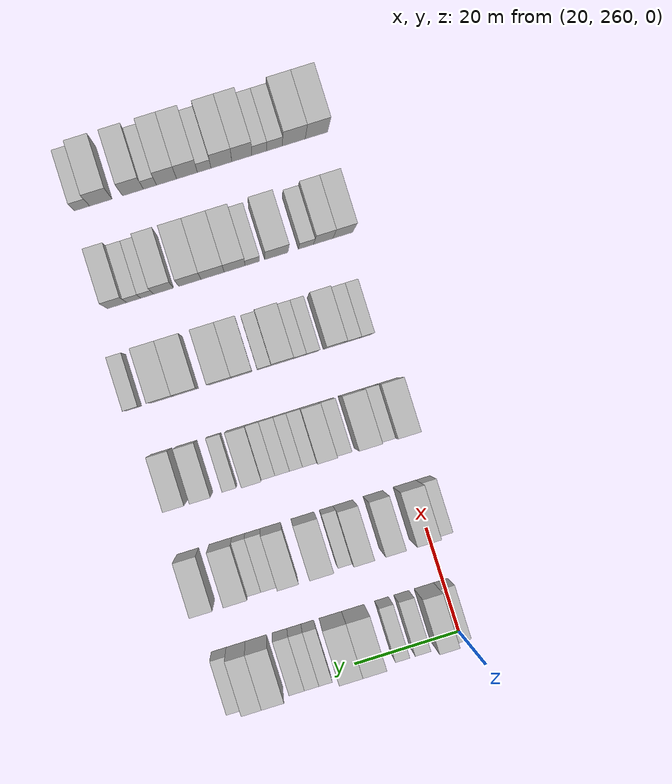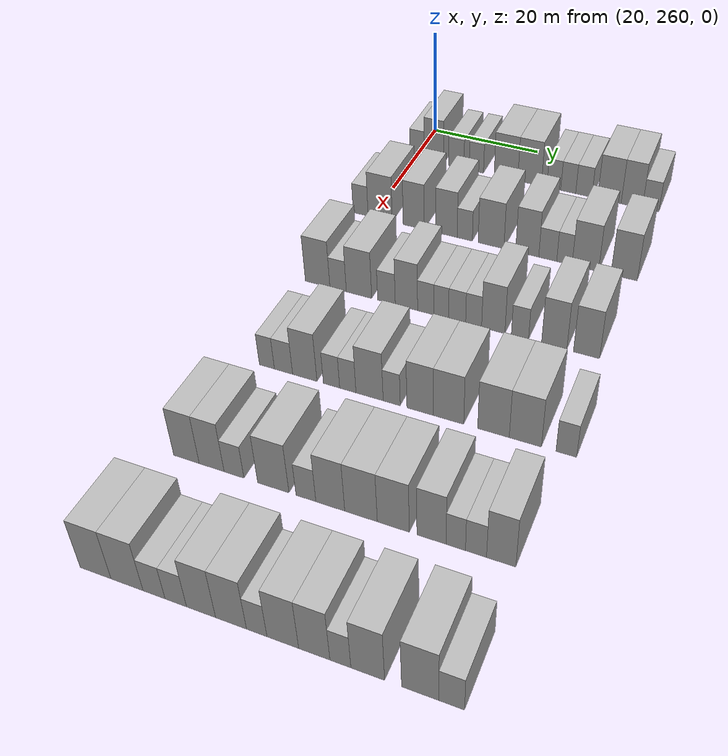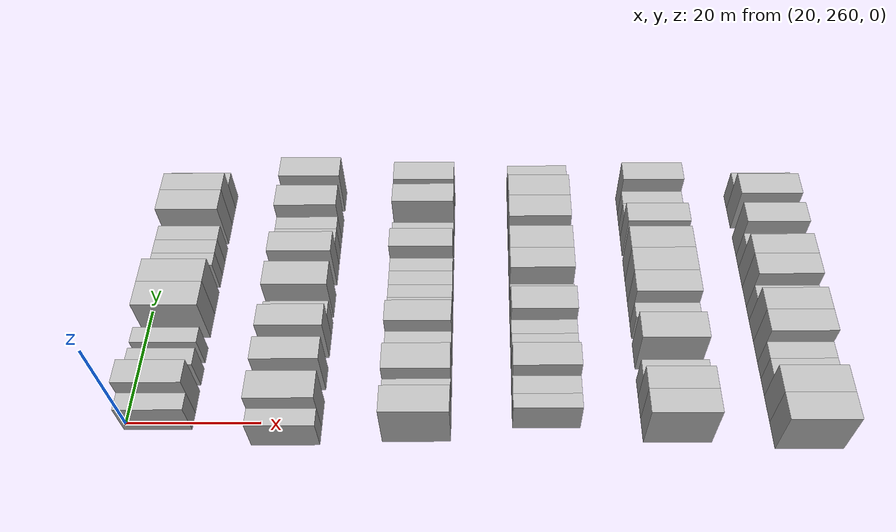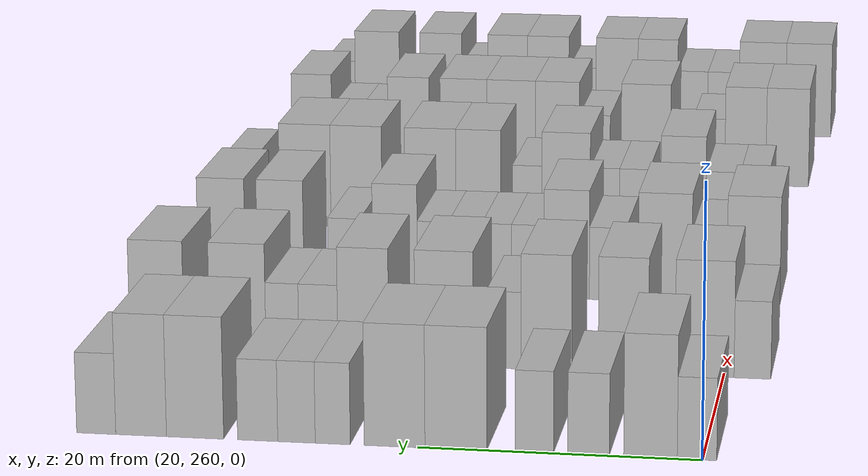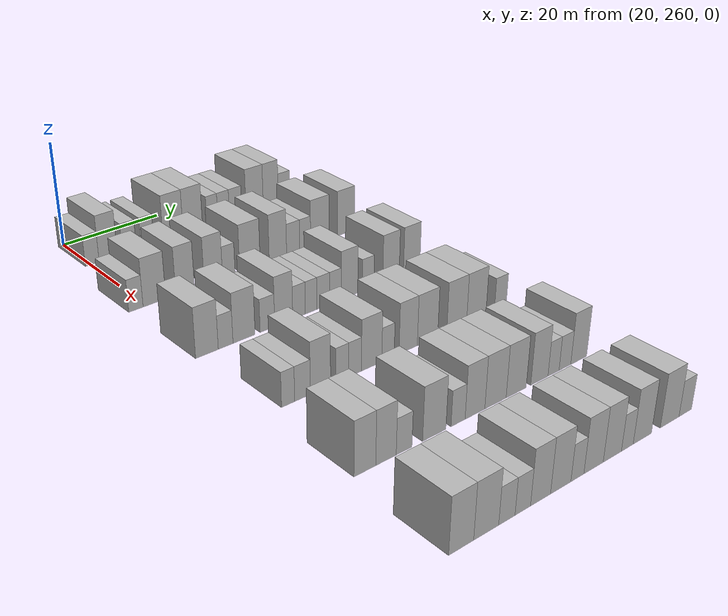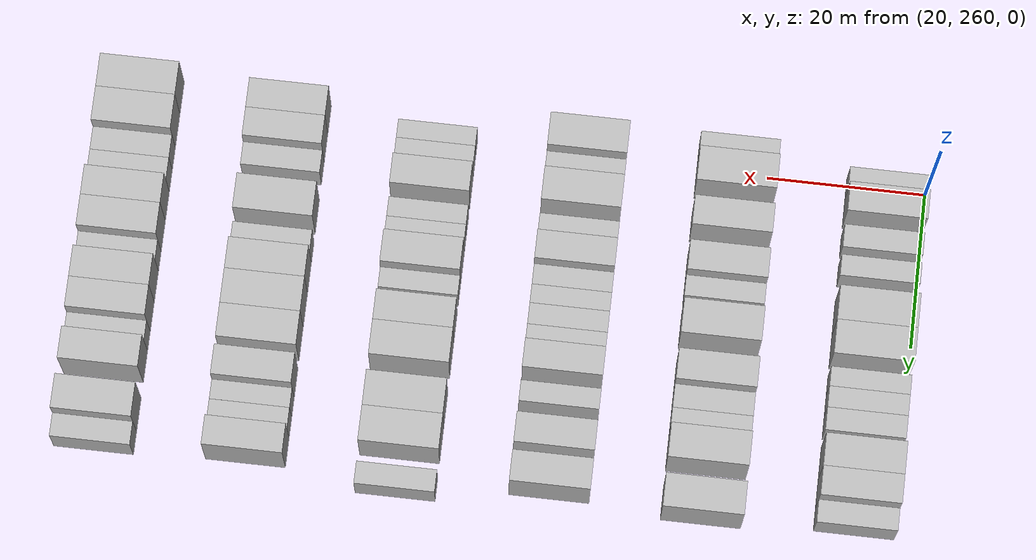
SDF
<sdf version="1.6">
 <world name="default">
  <model name="building_146">
   <static>1</static>
   <pose>25.0000 260.3720 0 0.000000 0.000000 0.000000</pose>
   <link name="link">
    <pose>0 0 3.00 0 0 0</pose>
    <collision name="collision"><geometry><box><size>10.0000 2.7500 6.0000</size></box></geometry></collision>
    <visual name="visual">
     <cast_shadows>0</cast_shadows>
     <geometry><box><size>10.0000 2.7500 6.0000</size></box></geometry>
     <material>
      <script>
       <uri>model://HANNAS_wall/materials/scripts</uri>
       <uri>model://HANNAS_wall/materials/textures</uri>
       <name>vrc/HANNAS_wall</name>
      </script>
     </material>
    </visual>
   </link>
  </model>
  <model name="building_147">
   <static>1</static>
   <pose>25.0000 263.6172 0 0.000000 0.000000 0.000000</pose>
   <link name="link">
    <pose>0 0 4.50 0 0 0</pose>
    <collision name="collision"><geometry><box><size>10.0000 3.7403 9.0000</size></box></geometry></collision>
    <visual name="visual">
     <cast_shadows>0</cast_shadows>
     <geometry><box><size>10.0000 3.7403 9.0000</size></box></geometry>
     <material>
      <script>
       <uri>model://HANNAS_wall/materials/scripts</uri>
       <uri>model://HANNAS_wall/materials/textures</uri>
       <name>vrc/HANNAS_wall</name>
      </script>
     </material>
    </visual>
   </link>
  </model>
  <model name="building_148">
   <static>1</static>
   <pose>25.0000 267.9489 0 0.000000 0.000000 0.000000</pose>
   <link name="link">
    <pose>0 0 3.00 0 0 0</pose>
    <collision name="collision"><geometry><box><size>10.0000 2.9232 6.0000</size></box></geometry></collision>
    <visual name="visual">
     <cast_shadows>0</cast_shadows>
     <geometry><box><size>10.0000 2.9232 6.0000</size></box></geometry>
     <material>
      <script>
       <uri>model://HANNAS_wall/materials/scripts</uri>
       <uri>model://HANNAS_wall/materials/textures</uri>
       <name>vrc/HANNAS_wall</name>
      </script>
     </material>
    </visual>
   </link>
  </model>
  <model name="building_149">
   <static>1</static>
   <pose>25.0000 271.7581 0 0.000000 0.000000 0.000000</pose>
   <link name="link">
    <pose>0 0 3.00 0 0 0</pose>
    <collision name="collision"><geometry><box><size>10.0000 2.6952 6.0000</size></box></geometry></collision>
    <visual name="visual">
     <cast_shadows>0</cast_shadows>
     <geometry><box><size>10.0000 2.6952 6.0000</size></box></geometry>
     <material>
      <script>
       <uri>model://HANNAS_wall/materials/scripts</uri>
       <uri>model://HANNAS_wall/materials/textures</uri>
       <name>vrc/HANNAS_wall</name>
      </script>
     </material>
    </visual>
   </link>
  </model>
  <model name="building_150">
   <static>1</static>
   <pose>25.0000 277.2980 0 0.000000 0.000000 0.000000</pose>
   <link name="link">
    <pose>0 0 4.50 0 0 0</pose>
    <collision name="collision"><geometry><box><size>10.0000 4.3846 9.0000</size></box></geometry></collision>
    <visual name="visual">
     <cast_shadows>0</cast_shadows>
     <geometry><box><size>10.0000 4.3846 9.0000</size></box></geometry>
     <material>
      <script>
       <uri>model://HANNAS_wall/materials/scripts</uri>
       <uri>model://HANNAS_wall/materials/textures</uri>
       <name>vrc/HANNAS_wall</name>
      </script>
     </material>
    </visual>
   </link>
  </model>
  <model name="building_151">
   <static>1</static>
   <pose>25.0000 281.6500 0 0.000000 0.000000 0.000000</pose>
   <link name="link">
    <pose>0 0 4.50 0 0 0</pose>
    <collision name="collision"><geometry><box><size>10.0000 4.3195 9.0000</size></box></geometry></collision>
    <visual name="visual">
     <cast_shadows>0</cast_shadows>
     <geometry><box><size>10.0000 4.3195 9.0000</size></box></geometry>
     <material>
      <script>
       <uri>model://HANNAS_wall/materials/scripts</uri>
       <uri>model://HANNAS_wall/materials/textures</uri>
       <name>vrc/HANNAS_wall</name>
      </script>
     </material>
    </visual>
   </link>
  </model>
  <model name="building_152">
   <static>1</static>
   <pose>25.0000 286.0616 0 0.000000 0.000000 0.000000</pose>
   <link name="link">
    <pose>0 0 3.00 0 0 0</pose>
    <collision name="collision"><geometry><box><size>10.0000 2.5037 6.0000</size></box></geometry></collision>
    <visual name="visual">
     <cast_shadows>0</cast_shadows>
     <geometry><box><size>10.0000 2.5037 6.0000</size></box></geometry>
     <material>
      <script>
       <uri>model://HANNAS_wall/materials/scripts</uri>
       <uri>model://HANNAS_wall/materials/textures</uri>
       <name>vrc/HANNAS_wall</name>
      </script>
     </material>
    </visual>
   </link>
  </model>
  <model name="building_153">
   <static>1</static>
   <pose>25.0000 288.6567 0 0.000000 0.000000 0.000000</pose>
   <link name="link">
    <pose>0 0 3.00 0 0 0</pose>
    <collision name="collision"><geometry><box><size>10.0000 2.6864 6.0000</size></box></geometry></collision>
    <visual name="visual">
     <cast_shadows>0</cast_shadows>
     <geometry><box><size>10.0000 2.6864 6.0000</size></box></geometry>
     <material>
      <script>
       <uri>model://HANNAS_wall/materials/scripts</uri>
       <uri>model://HANNAS_wall/materials/textures</uri>
       <name>vrc/HANNAS_wall</name>
      </script>
     </material>
    </visual>
   </link>
  </model>
  <model name="building_154">
   <static>1</static>
   <pose>25.0000 291.4431 0 0.000000 0.000000 0.000000</pose>
   <link name="link">
    <pose>0 0 3.00 0 0 0</pose>
    <collision name="collision"><geometry><box><size>10.0000 2.8865 6.0000</size></box></geometry></collision>
    <visual name="visual">
     <cast_shadows>0</cast_shadows>
     <geometry><box><size>10.0000 2.8865 6.0000</size></box></geometry>
     <material>
      <script>
       <uri>model://HANNAS_wall/materials/scripts</uri>
       <uri>model://HANNAS_wall/materials/textures</uri>
       <name>vrc/HANNAS_wall</name>
      </script>
     </material>
    </visual>
   </link>
  </model>
  <model name="building_155">
   <static>1</static>
   <pose>25.0000 295.9518 0 0.000000 0.000000 0.000000</pose>
   <link name="link">
    <pose>0 0 4.50 0 0 0</pose>
    <collision name="collision"><geometry><box><size>10.0000 4.1308 9.0000</size></box></geometry></collision>
    <visual name="visual">
     <cast_shadows>0</cast_shadows>
     <geometry><box><size>10.0000 4.1308 9.0000</size></box></geometry>
     <material>
      <script>
       <uri>model://HANNAS_wall/materials/scripts</uri>
       <uri>model://HANNAS_wall/materials/textures</uri>
       <name>vrc/HANNAS_wall</name>
      </script>
     </material>
    </visual>
   </link>
  </model>
  <model name="building_156">
   <static>1</static>
   <pose>25.0000 299.8559 0 0.000000 0.000000 0.000000</pose>
   <link name="link">
    <pose>0 0 4.50 0 0 0</pose>
    <collision name="collision"><geometry><box><size>10.0000 3.6775 9.0000</size></box></geometry></collision>
    <visual name="visual">
     <cast_shadows>0</cast_shadows>
     <geometry><box><size>10.0000 3.6775 9.0000</size></box></geometry>
     <material>
      <script>
       <uri>model://HANNAS_wall/materials/scripts</uri>
       <uri>model://HANNAS_wall/materials/textures</uri>
       <name>vrc/HANNAS_wall</name>
      </script>
     </material>
    </visual>
   </link>
  </model>
  <model name="building_157">
   <static>1</static>
   <pose>25.0000 303.1156 0 0.000000 0.000000 0.000000</pose>
   <link name="link">
    <pose>0 0 3.00 0 0 0</pose>
    <collision name="collision"><geometry><box><size>10.0000 2.8419 6.0000</size></box></geometry></collision>
    <visual name="visual">
     <cast_shadows>0</cast_shadows>
     <geometry><box><size>10.0000 2.8419 6.0000</size></box></geometry>
     <material>
      <script>
       <uri>model://HANNAS_wall/materials/scripts</uri>
       <uri>model://HANNAS_wall/materials/textures</uri>
       <name>vrc/HANNAS_wall</name>
      </script>
     </material>
    </visual>
   </link>
  </model>
  <model name="building_302">
   <static>1</static>
   <pose>44.0000 257.8319 0 0.000000 0.000000 0.000000</pose>
   <link name="link">
    <pose>0 0 3.00 0 0 0</pose>
    <collision name="collision"><geometry><box><size>10.0000 2.7476 6.0000</size></box></geometry></collision>
    <visual name="visual">
     <cast_shadows>0</cast_shadows>
     <geometry><box><size>10.0000 2.7476 6.0000</size></box></geometry>
     <material>
      <script>
       <uri>model://HANNAS_wall/materials/scripts</uri>
       <uri>model://HANNAS_wall/materials/textures</uri>
       <name>vrc/HANNAS_wall</name>
      </script>
     </material>
    </visual>
   </link>
  </model>
  <model name="building_303">
   <static>1</static>
   <pose>44.0000 261.4121 0 0.000000 0.000000 0.000000</pose>
   <link name="link">
    <pose>0 0 4.50 0 0 0</pose>
    <collision name="collision"><geometry><box><size>10.0000 4.4127 9.0000</size></box></geometry></collision>
    <visual name="visual">
     <cast_shadows>0</cast_shadows>
     <geometry><box><size>10.0000 4.4127 9.0000</size></box></geometry>
     <material>
      <script>
       <uri>model://HANNAS_wall/materials/scripts</uri>
       <uri>model://HANNAS_wall/materials/textures</uri>
       <name>vrc/HANNAS_wall</name>
      </script>
     </material>
    </visual>
   </link>
  </model>
  <model name="building_304">
   <static>1</static>
   <pose>44.0000 267.5027 0 0.000000 0.000000 0.000000</pose>
   <link name="link">
    <pose>0 0 4.50 0 0 0</pose>
    <collision name="collision"><geometry><box><size>10.0000 3.7686 9.0000</size></box></geometry></collision>
    <visual name="visual">
     <cast_shadows>0</cast_shadows>
     <geometry><box><size>10.0000 3.7686 9.0000</size></box></geometry>
     <material>
      <script>
       <uri>model://HANNAS_wall/materials/scripts</uri>
       <uri>model://HANNAS_wall/materials/textures</uri>
       <name>vrc/HANNAS_wall</name>
      </script>
     </material>
    </visual>
   </link>
  </model>
  <model name="building_305">
   <static>1</static>
   <pose>44.0000 273.2945 0 0.000000 0.000000 0.000000</pose>
   <link name="link">
    <pose>0 0 4.50 0 0 0</pose>
    <collision name="collision"><geometry><box><size>10.0000 3.8151 9.0000</size></box></geometry></collision>
    <visual name="visual">
     <cast_shadows>0</cast_shadows>
     <geometry><box><size>10.0000 3.8151 9.0000</size></box></geometry>
     <material>
      <script>
       <uri>model://HANNAS_wall/materials/scripts</uri>
       <uri>model://HANNAS_wall/materials/textures</uri>
       <name>vrc/HANNAS_wall</name>
      </script>
     </material>
    </visual>
   </link>
  </model>
  <model name="building_306">
   <static>1</static>
   <pose>44.0000 276.5291 0 0.000000 0.000000 0.000000</pose>
   <link name="link">
    <pose>0 0 3.00 0 0 0</pose>
    <collision name="collision"><geometry><box><size>10.0000 2.6540 6.0000</size></box></geometry></collision>
    <visual name="visual">
     <cast_shadows>0</cast_shadows>
     <geometry><box><size>10.0000 2.6540 6.0000</size></box></geometry>
     <material>
      <script>
       <uri>model://HANNAS_wall/materials/scripts</uri>
       <uri>model://HANNAS_wall/materials/textures</uri>
       <name>vrc/HANNAS_wall</name>
      </script>
     </material>
    </visual>
   </link>
  </model>
  <model name="building_307">
   <static>1</static>
   <pose>44.0000 281.0723 0 0.000000 0.000000 0.000000</pose>
   <link name="link">
    <pose>0 0 4.50 0 0 0</pose>
    <collision name="collision"><geometry><box><size>10.0000 4.4323 9.0000</size></box></geometry></collision>
    <visual name="visual">
     <cast_shadows>0</cast_shadows>
     <geometry><box><size>10.0000 4.4323 9.0000</size></box></geometry>
     <material>
      <script>
       <uri>model://HANNAS_wall/materials/scripts</uri>
       <uri>model://HANNAS_wall/materials/textures</uri>
       <name>vrc/HANNAS_wall</name>
      </script>
     </material>
    </visual>
   </link>
  </model>
  <model name="building_308">
   <static>1</static>
   <pose>44.0000 287.2372 0 0.000000 0.000000 0.000000</pose>
   <link name="link">
    <pose>0 0 4.50 0 0 0</pose>
    <collision name="collision"><geometry><box><size>10.0000 3.8975 9.0000</size></box></geometry></collision>
    <visual name="visual">
     <cast_shadows>0</cast_shadows>
     <geometry><box><size>10.0000 3.8975 9.0000</size></box></geometry>
     <material>
      <script>
       <uri>model://HANNAS_wall/materials/scripts</uri>
       <uri>model://HANNAS_wall/materials/textures</uri>
       <name>vrc/HANNAS_wall</name>
      </script>
     </material>
    </visual>
   </link>
  </model>
  <model name="building_309">
   <static>1</static>
   <pose>44.0000 290.6835 0 0.000000 0.000000 0.000000</pose>
   <link name="link">
    <pose>0 0 3.00 0 0 0</pose>
    <collision name="collision"><geometry><box><size>10.0000 2.9951 6.0000</size></box></geometry></collision>
    <visual name="visual">
     <cast_shadows>0</cast_shadows>
     <geometry><box><size>10.0000 2.9951 6.0000</size></box></geometry>
     <material>
      <script>
       <uri>model://HANNAS_wall/materials/scripts</uri>
       <uri>model://HANNAS_wall/materials/textures</uri>
       <name>vrc/HANNAS_wall</name>
      </script>
     </material>
    </visual>
   </link>
  </model>
  <model name="building_310">
   <static>1</static>
   <pose>44.0000 293.4499 0 0.000000 0.000000 0.000000</pose>
   <link name="link">
    <pose>0 0 3.00 0 0 0</pose>
    <collision name="collision"><geometry><box><size>10.0000 2.5378 6.0000</size></box></geometry></collision>
    <visual name="visual">
     <cast_shadows>0</cast_shadows>
     <geometry><box><size>10.0000 2.5378 6.0000</size></box></geometry>
     <material>
      <script>
       <uri>model://HANNAS_wall/materials/scripts</uri>
       <uri>model://HANNAS_wall/materials/textures</uri>
       <name>vrc/HANNAS_wall</name>
      </script>
     </material>
    </visual>
   </link>
  </model>
  <model name="building_311">
   <static>1</static>
   <pose>44.0000 296.8834 0 0.000000 0.000000 0.000000</pose>
   <link name="link">
    <pose>0 0 4.50 0 0 0</pose>
    <collision name="collision"><geometry><box><size>10.0000 4.3292 9.0000</size></box></geometry></collision>
    <visual name="visual">
     <cast_shadows>0</cast_shadows>
     <geometry><box><size>10.0000 4.3292 9.0000</size></box></geometry>
     <material>
      <script>
       <uri>model://HANNAS_wall/materials/scripts</uri>
       <uri>model://HANNAS_wall/materials/textures</uri>
       <name>vrc/HANNAS_wall</name>
      </script>
     </material>
    </visual>
   </link>
  </model>
  <model name="building_312">
   <static>1</static>
   <pose>44.0000 303.1518 0 0.000000 0.000000 0.000000</pose>
   <link name="link">
    <pose>0 0 4.50 0 0 0</pose>
    <collision name="collision"><geometry><box><size>10.0000 4.2075 9.0000</size></box></geometry></collision>
    <visual name="visual">
     <cast_shadows>0</cast_shadows>
     <geometry><box><size>10.0000 4.2075 9.0000</size></box></geometry>
     <material>
      <script>
       <uri>model://HANNAS_wall/materials/scripts</uri>
       <uri>model://HANNAS_wall/materials/textures</uri>
       <name>vrc/HANNAS_wall</name>
      </script>
     </material>
    </visual>
   </link>
  </model>
  <model name="building_478">
   <static>1</static>
   <pose>63.0000 259.0884 0 0.000000 0.000000 0.000000</pose>
   <link name="link">
    <pose>0 0 4.50 0 0 0</pose>
    <collision name="collision"><geometry><box><size>10.0000 4.2360 9.0000</size></box></geometry></collision>
    <visual name="visual">
     <cast_shadows>0</cast_shadows>
     <geometry><box><size>10.0000 4.2360 9.0000</size></box></geometry>
     <material>
      <script>
       <uri>model://HANNAS_wall/materials/scripts</uri>
       <uri>model://HANNAS_wall/materials/textures</uri>
       <name>vrc/HANNAS_wall</name>
      </script>
     </material>
    </visual>
   </link>
  </model>
  <model name="building_479">
   <static>1</static>
   <pose>63.0000 262.6078 0 0.000000 0.000000 0.000000</pose>
   <link name="link">
    <pose>0 0 3.00 0 0 0</pose>
    <collision name="collision"><geometry><box><size>10.0000 2.8029 6.0000</size></box></geometry></collision>
    <visual name="visual">
     <cast_shadows>0</cast_shadows>
     <geometry><box><size>10.0000 2.8029 6.0000</size></box></geometry>
     <material>
      <script>
       <uri>model://HANNAS_wall/materials/scripts</uri>
       <uri>model://HANNAS_wall/materials/textures</uri>
       <name>vrc/HANNAS_wall</name>
      </script>
     </material>
    </visual>
   </link>
  </model>
  <model name="building_480">
   <static>1</static>
   <pose>63.0000 266.1550 0 0.000000 0.000000 0.000000</pose>
   <link name="link">
    <pose>0 0 4.50 0 0 0</pose>
    <collision name="collision"><geometry><box><size>10.0000 4.2916 9.0000</size></box></geometry></collision>
    <visual name="visual">
     <cast_shadows>0</cast_shadows>
     <geometry><box><size>10.0000 4.2916 9.0000</size></box></geometry>
     <material>
      <script>
       <uri>model://HANNAS_wall/materials/scripts</uri>
       <uri>model://HANNAS_wall/materials/textures</uri>
       <name>vrc/HANNAS_wall</name>
      </script>
     </material>
    </visual>
   </link>
  </model>
  <model name="building_481">
   <static>1</static>
   <pose>63.0000 270.7632 0 0.000000 0.000000 0.000000</pose>
   <link name="link">
    <pose>0 0 3.00 0 0 0</pose>
    <collision name="collision"><geometry><box><size>10.0000 2.9246 6.0000</size></box></geometry></collision>
    <visual name="visual">
     <cast_shadows>0</cast_shadows>
     <geometry><box><size>10.0000 2.9246 6.0000</size></box></geometry>
     <material>
      <script>
       <uri>model://HANNAS_wall/materials/scripts</uri>
       <uri>model://HANNAS_wall/materials/textures</uri>
       <name>vrc/HANNAS_wall</name>
      </script>
     </material>
    </visual>
   </link>
  </model>
  <model name="building_482">
   <static>1</static>
   <pose>63.0000 274.0598 0 0.000000 0.000000 0.000000</pose>
   <link name="link">
    <pose>0 0 4.50 0 0 0</pose>
    <collision name="collision"><geometry><box><size>10.0000 3.6686 9.0000</size></box></geometry></collision>
    <visual name="visual">
     <cast_shadows>0</cast_shadows>
     <geometry><box><size>10.0000 3.6686 9.0000</size></box></geometry>
     <material>
      <script>
       <uri>model://HANNAS_wall/materials/scripts</uri>
       <uri>model://HANNAS_wall/materials/textures</uri>
       <name>vrc/HANNAS_wall</name>
      </script>
     </material>
    </visual>
   </link>
  </model>
  <model name="building_483">
   <static>1</static>
   <pose>63.0000 277.1998 0 0.000000 0.000000 0.000000</pose>
   <link name="link">
    <pose>0 0 3.00 0 0 0</pose>
    <collision name="collision"><geometry><box><size>10.0000 2.6113 6.0000</size></box></geometry></collision>
    <visual name="visual">
     <cast_shadows>0</cast_shadows>
     <geometry><box><size>10.0000 2.6113 6.0000</size></box></geometry>
     <material>
      <script>
       <uri>model://HANNAS_wall/materials/scripts</uri>
       <uri>model://HANNAS_wall/materials/textures</uri>
       <name>vrc/HANNAS_wall</name>
      </script>
     </material>
    </visual>
   </link>
  </model>
  <model name="building_484">
   <static>1</static>
   <pose>63.0000 279.7142 0 0.000000 0.000000 0.000000</pose>
   <link name="link">
    <pose>0 0 3.00 0 0 0</pose>
    <collision name="collision"><geometry><box><size>10.0000 2.4177 6.0000</size></box></geometry></collision>
    <visual name="visual">
     <cast_shadows>0</cast_shadows>
     <geometry><box><size>10.0000 2.4177 6.0000</size></box></geometry>
     <material>
      <script>
       <uri>model://HANNAS_wall/materials/scripts</uri>
       <uri>model://HANNAS_wall/materials/textures</uri>
       <name>vrc/HANNAS_wall</name>
      </script>
     </material>
    </visual>
   </link>
  </model>
  <model name="building_485">
   <static>1</static>
   <pose>63.0000 282.2805 0 0.000000 0.000000 0.000000</pose>
   <link name="link">
    <pose>0 0 3.00 0 0 0</pose>
    <collision name="collision"><geometry><box><size>10.0000 2.7148 6.0000</size></box></geometry></collision>
    <visual name="visual">
     <cast_shadows>0</cast_shadows>
     <geometry><box><size>10.0000 2.7148 6.0000</size></box></geometry>
     <material>
      <script>
       <uri>model://HANNAS_wall/materials/scripts</uri>
       <uri>model://HANNAS_wall/materials/textures</uri>
       <name>vrc/HANNAS_wall</name>
      </script>
     </material>
    </visual>
   </link>
  </model>
  <model name="building_486">
   <static>1</static>
   <pose>63.0000 284.9023 0 0.000000 0.000000 0.000000</pose>
   <link name="link">
    <pose>0 0 3.00 0 0 0</pose>
    <collision name="collision"><geometry><box><size>10.0000 2.5289 6.0000</size></box></geometry></collision>
    <visual name="visual">
     <cast_shadows>0</cast_shadows>
     <geometry><box><size>10.0000 2.5289 6.0000</size></box></geometry>
     <material>
      <script>
       <uri>model://HANNAS_wall/materials/scripts</uri>
       <uri>model://HANNAS_wall/materials/textures</uri>
       <name>vrc/HANNAS_wall</name>
      </script>
     </material>
    </visual>
   </link>
  </model>
  <model name="building_487">
   <static>1</static>
   <pose>63.0000 287.9928 0 0.000000 0.000000 0.000000</pose>
   <link name="link">
    <pose>0 0 4.50 0 0 0</pose>
    <collision name="collision"><geometry><box><size>10.0000 3.6520 9.0000</size></box></geometry></collision>
    <visual name="visual">
     <cast_shadows>0</cast_shadows>
     <geometry><box><size>10.0000 3.6520 9.0000</size></box></geometry>
     <material>
      <script>
       <uri>model://HANNAS_wall/materials/scripts</uri>
       <uri>model://HANNAS_wall/materials/textures</uri>
       <name>vrc/HANNAS_wall</name>
      </script>
     </material>
    </visual>
   </link>
  </model>
  <model name="building_488">
   <static>1</static>
   <pose>63.0000 292.1440 0 0.000000 0.000000 0.000000</pose>
   <link name="link">
    <pose>0 0 3.00 0 0 0</pose>
    <collision name="collision"><geometry><box><size>10.0000 2.6503 6.0000</size></box></geometry></collision>
    <visual name="visual">
     <cast_shadows>0</cast_shadows>
     <geometry><box><size>10.0000 2.6503 6.0000</size></box></geometry>
     <material>
      <script>
       <uri>model://HANNAS_wall/materials/scripts</uri>
       <uri>model://HANNAS_wall/materials/textures</uri>
       <name>vrc/HANNAS_wall</name>
      </script>
     </material>
    </visual>
   </link>
  </model>
  <model name="building_489">
   <static>1</static>
   <pose>63.0000 297.3786 0 0.000000 0.000000 0.000000</pose>
   <link name="link">
    <pose>0 0 4.50 0 0 0</pose>
    <collision name="collision"><geometry><box><size>10.0000 3.8190 9.0000</size></box></geometry></collision>
    <visual name="visual">
     <cast_shadows>0</cast_shadows>
     <geometry><box><size>10.0000 3.8190 9.0000</size></box></geometry>
     <material>
      <script>
       <uri>model://HANNAS_wall/materials/scripts</uri>
       <uri>model://HANNAS_wall/materials/textures</uri>
       <name>vrc/HANNAS_wall</name>
      </script>
     </material>
    </visual>
   </link>
  </model>
  <model name="building_490">
   <static>1</static>
   <pose>63.0000 302.2410 0 0.000000 0.000000 0.000000</pose>
   <link name="link">
    <pose>0 0 4.50 0 0 0</pose>
    <collision name="collision"><geometry><box><size>10.0000 3.9057 9.0000</size></box></geometry></collision>
    <visual name="visual">
     <cast_shadows>0</cast_shadows>
     <geometry><box><size>10.0000 3.9057 9.0000</size></box></geometry>
     <material>
      <script>
       <uri>model://HANNAS_wall/materials/scripts</uri>
       <uri>model://HANNAS_wall/materials/textures</uri>
       <name>vrc/HANNAS_wall</name>
      </script>
     </material>
    </visual>
   </link>
  </model>
  <model name="building_641">
   <static>1</static>
   <pose>82.0000 260.3538 0 0.000000 0.000000 0.000000</pose>
   <link name="link">
    <pose>0 0 3.00 0 0 0</pose>
    <collision name="collision"><geometry><box><size>10.0000 2.4054 6.0000</size></box></geometry></collision>
    <visual name="visual">
     <cast_shadows>0</cast_shadows>
     <geometry><box><size>10.0000 2.4054 6.0000</size></box></geometry>
     <material>
      <script>
       <uri>model://HANNAS_wall/materials/scripts</uri>
       <uri>model://HANNAS_wall/materials/textures</uri>
       <name>vrc/HANNAS_wall</name>
      </script>
     </material>
    </visual>
   </link>
  </model>
  <model name="building_642">
   <static>1</static>
   <pose>82.0000 263.0087 0 0.000000 0.000000 0.000000</pose>
   <link name="link">
    <pose>0 0 3.00 0 0 0</pose>
    <collision name="collision"><geometry><box><size>10.0000 2.9045 6.0000</size></box></geometry></collision>
    <visual name="visual">
     <cast_shadows>0</cast_shadows>
     <geometry><box><size>10.0000 2.9045 6.0000</size></box></geometry>
     <material>
      <script>
       <uri>model://HANNAS_wall/materials/scripts</uri>
       <uri>model://HANNAS_wall/materials/textures</uri>
       <name>vrc/HANNAS_wall</name>
      </script>
     </material>
    </visual>
   </link>
  </model>
  <model name="building_643">
   <static>1</static>
   <pose>82.0000 266.3806 0 0.000000 0.000000 0.000000</pose>
   <link name="link">
    <pose>0 0 4.50 0 0 0</pose>
    <collision name="collision"><geometry><box><size>10.0000 3.8392 9.0000</size></box></geometry></collision>
    <visual name="visual">
     <cast_shadows>0</cast_shadows>
     <geometry><box><size>10.0000 3.8392 9.0000</size></box></geometry>
     <material>
      <script>
       <uri>model://HANNAS_wall/materials/scripts</uri>
       <uri>model://HANNAS_wall/materials/textures</uri>
       <name>vrc/HANNAS_wall</name>
      </script>
     </material>
    </visual>
   </link>
  </model>
  <model name="building_644">
   <static>1</static>
   <pose>82.0000 270.5639 0 0.000000 0.000000 0.000000</pose>
   <link name="link">
    <pose>0 0 3.00 0 0 0</pose>
    <collision name="collision"><geometry><box><size>10.0000 2.5275 6.0000</size></box></geometry></collision>
    <visual name="visual">
     <cast_shadows>0</cast_shadows>
     <geometry><box><size>10.0000 2.5275 6.0000</size></box></geometry>
     <material>
      <script>
       <uri>model://HANNAS_wall/materials/scripts</uri>
       <uri>model://HANNAS_wall/materials/textures</uri>
       <name>vrc/HANNAS_wall</name>
      </script>
     </material>
    </visual>
   </link>
  </model>
  <model name="building_645">
   <static>1</static>
   <pose>82.0000 273.0786 0 0.000000 0.000000 0.000000</pose>
   <link name="link">
    <pose>0 0 3.00 0 0 0</pose>
    <collision name="collision"><geometry><box><size>10.0000 2.5019 6.0000</size></box></geometry></collision>
    <visual name="visual">
     <cast_shadows>0</cast_shadows>
     <geometry><box><size>10.0000 2.5019 6.0000</size></box></geometry>
     <material>
      <script>
       <uri>model://HANNAS_wall/materials/scripts</uri>
       <uri>model://HANNAS_wall/materials/textures</uri>
       <name>vrc/HANNAS_wall</name>
      </script>
     </material>
    </visual>
   </link>
  </model>
  <model name="building_646">
   <static>1</static>
   <pose>82.0000 276.3926 0 0.000000 0.000000 0.000000</pose>
   <link name="link">
    <pose>0 0 4.50 0 0 0</pose>
    <collision name="collision"><geometry><box><size>10.0000 4.1261 9.0000</size></box></geometry></collision>
    <visual name="visual">
     <cast_shadows>0</cast_shadows>
     <geometry><box><size>10.0000 4.1261 9.0000</size></box></geometry>
     <material>
      <script>
       <uri>model://HANNAS_wall/materials/scripts</uri>
       <uri>model://HANNAS_wall/materials/textures</uri>
       <name>vrc/HANNAS_wall</name>
      </script>
     </material>
    </visual>
   </link>
  </model>
  <model name="building_647">
   <static>1</static>
   <pose>82.0000 279.7356 0 0.000000 0.000000 0.000000</pose>
   <link name="link">
    <pose>0 0 3.00 0 0 0</pose>
    <collision name="collision"><geometry><box><size>10.0000 2.5601 6.0000</size></box></geometry></collision>
    <visual name="visual">
     <cast_shadows>0</cast_shadows>
     <geometry><box><size>10.0000 2.5601 6.0000</size></box></geometry>
     <material>
      <script>
       <uri>model://HANNAS_wall/materials/scripts</uri>
       <uri>model://HANNAS_wall/materials/textures</uri>
       <name>vrc/HANNAS_wall</name>
      </script>
     </material>
    </visual>
   </link>
  </model>
  <model name="building_648">
   <static>1</static>
   <pose>82.0000 283.9540 0 0.000000 0.000000 0.000000</pose>
   <link name="link">
    <pose>0 0 4.50 0 0 0</pose>
    <collision name="collision"><geometry><box><size>10.0000 3.8766 9.0000</size></box></geometry></collision>
    <visual name="visual">
     <cast_shadows>0</cast_shadows>
     <geometry><box><size>10.0000 3.8766 9.0000</size></box></geometry>
     <material>
      <script>
       <uri>model://HANNAS_wall/materials/scripts</uri>
       <uri>model://HANNAS_wall/materials/textures</uri>
       <name>vrc/HANNAS_wall</name>
      </script>
     </material>
    </visual>
   </link>
  </model>
  <model name="building_649">
   <static>1</static>
   <pose>82.0000 288.1056 0 0.000000 0.000000 0.000000</pose>
   <link name="link">
    <pose>0 0 4.50 0 0 0</pose>
    <collision name="collision"><geometry><box><size>10.0000 4.4266 9.0000</size></box></geometry></collision>
    <visual name="visual">
     <cast_shadows>0</cast_shadows>
     <geometry><box><size>10.0000 4.4266 9.0000</size></box></geometry>
     <material>
      <script>
       <uri>model://HANNAS_wall/materials/scripts</uri>
       <uri>model://HANNAS_wall/materials/textures</uri>
       <name>vrc/HANNAS_wall</name>
      </script>
     </material>
    </visual>
   </link>
  </model>
  <model name="building_650">
   <static>1</static>
   <pose>82.0000 294.5526 0 0.000000 0.000000 0.000000</pose>
   <link name="link">
    <pose>0 0 4.50 0 0 0</pose>
    <collision name="collision"><geometry><box><size>10.0000 4.4674 9.0000</size></box></geometry></collision>
    <visual name="visual">
     <cast_shadows>0</cast_shadows>
     <geometry><box><size>10.0000 4.4674 9.0000</size></box></geometry>
     <material>
      <script>
       <uri>model://HANNAS_wall/materials/scripts</uri>
       <uri>model://HANNAS_wall/materials/textures</uri>
       <name>vrc/HANNAS_wall</name>
      </script>
     </material>
    </visual>
   </link>
  </model>
  <model name="building_651">
   <static>1</static>
   <pose>82.0000 299.0259 0 0.000000 0.000000 0.000000</pose>
   <link name="link">
    <pose>0 0 4.50 0 0 0</pose>
    <collision name="collision"><geometry><box><size>10.0000 4.4792 9.0000</size></box></geometry></collision>
    <visual name="visual">
     <cast_shadows>0</cast_shadows>
     <geometry><box><size>10.0000 4.4792 9.0000</size></box></geometry>
     <material>
      <script>
       <uri>model://HANNAS_wall/materials/scripts</uri>
       <uri>model://HANNAS_wall/materials/textures</uri>
       <name>vrc/HANNAS_wall</name>
      </script>
     </material>
    </visual>
   </link>
  </model>
  <model name="building_652">
   <static>1</static>
   <pose>82.0000 304.6731 0 0.000000 0.000000 0.000000</pose>
   <link name="link">
    <pose>0 0 3.00 0 0 0</pose>
    <collision name="collision"><geometry><box><size>10.0000 2.8151 6.0000</size></box></geometry></collision>
    <visual name="visual">
     <cast_shadows>0</cast_shadows>
     <geometry><box><size>10.0000 2.8151 6.0000</size></box></geometry>
     <material>
      <script>
       <uri>model://HANNAS_wall/materials/scripts</uri>
       <uri>model://HANNAS_wall/materials/textures</uri>
       <name>vrc/HANNAS_wall</name>
      </script>
     </material>
    </visual>
   </link>
  </model>
  <model name="building_820">
   <static>1</static>
   <pose>101.0000 258.6617 0 0.000000 0.000000 0.000000</pose>
   <link name="link">
    <pose>0 0 4.50 0 0 0</pose>
    <collision name="collision"><geometry><box><size>10.0000 3.8390 9.0000</size></box></geometry></collision>
    <visual name="visual">
     <cast_shadows>0</cast_shadows>
     <geometry><box><size>10.0000 3.8390 9.0000</size></box></geometry>
     <material>
      <script>
       <uri>model://HANNAS_wall/materials/scripts</uri>
       <uri>model://HANNAS_wall/materials/textures</uri>
       <name>vrc/HANNAS_wall</name>
      </script>
     </material>
    </visual>
   </link>
  </model>
  <model name="building_821">
   <static>1</static>
   <pose>101.0000 262.4317 0 0.000000 0.000000 0.000000</pose>
   <link name="link">
    <pose>0 0 4.50 0 0 0</pose>
    <collision name="collision"><geometry><box><size>10.0000 3.7012 9.0000</size></box></geometry></collision>
    <visual name="visual">
     <cast_shadows>0</cast_shadows>
     <geometry><box><size>10.0000 3.7012 9.0000</size></box></geometry>
     <material>
      <script>
       <uri>model://HANNAS_wall/materials/scripts</uri>
       <uri>model://HANNAS_wall/materials/textures</uri>
       <name>vrc/HANNAS_wall</name>
      </script>
     </material>
    </visual>
   </link>
  </model>
  <model name="building_822">
   <static>1</static>
   <pose>101.0000 265.7371 0 0.000000 0.000000 0.000000</pose>
   <link name="link">
    <pose>0 0 3.00 0 0 0</pose>
    <collision name="collision"><geometry><box><size>10.0000 2.9096 6.0000</size></box></geometry></collision>
    <visual name="visual">
     <cast_shadows>0</cast_shadows>
     <geometry><box><size>10.0000 2.9096 6.0000</size></box></geometry>
     <material>
      <script>
       <uri>model://HANNAS_wall/materials/scripts</uri>
       <uri>model://HANNAS_wall/materials/textures</uri>
       <name>vrc/HANNAS_wall</name>
      </script>
     </material>
    </visual>
   </link>
  </model>
  <model name="building_823">
   <static>1</static>
   <pose>101.0000 271.4336 0 0.000000 0.000000 0.000000</pose>
   <link name="link">
    <pose>0 0 4.50 0 0 0</pose>
    <collision name="collision"><geometry><box><size>10.0000 4.4834 9.0000</size></box></geometry></collision>
    <visual name="visual">
     <cast_shadows>0</cast_shadows>
     <geometry><box><size>10.0000 4.4834 9.0000</size></box></geometry>
     <material>
      <script>
       <uri>model://HANNAS_wall/materials/scripts</uri>
       <uri>model://HANNAS_wall/materials/textures</uri>
       <name>vrc/HANNAS_wall</name>
      </script>
     </material>
    </visual>
   </link>
  </model>
  <model name="building_824">
   <static>1</static>
   <pose>101.0000 276.0699 0 0.000000 0.000000 0.000000</pose>
   <link name="link">
    <pose>0 0 3.00 0 0 0</pose>
    <collision name="collision"><geometry><box><size>10.0000 2.7891 6.0000</size></box></geometry></collision>
    <visual name="visual">
     <cast_shadows>0</cast_shadows>
     <geometry><box><size>10.0000 2.7891 6.0000</size></box></geometry>
     <material>
      <script>
       <uri>model://HANNAS_wall/materials/scripts</uri>
       <uri>model://HANNAS_wall/materials/textures</uri>
       <name>vrc/HANNAS_wall</name>
      </script>
     </material>
    </visual>
   </link>
  </model>
  <model name="building_825">
   <static>1</static>
   <pose>101.0000 279.4677 0 0.000000 0.000000 0.000000</pose>
   <link name="link">
    <pose>0 0 4.50 0 0 0</pose>
    <collision name="collision"><geometry><box><size>10.0000 4.0065 9.0000</size></box></geometry></collision>
    <visual name="visual">
     <cast_shadows>0</cast_shadows>
     <geometry><box><size>10.0000 4.0065 9.0000</size></box></geometry>
     <material>
      <script>
       <uri>model://HANNAS_wall/materials/scripts</uri>
       <uri>model://HANNAS_wall/materials/textures</uri>
       <name>vrc/HANNAS_wall</name>
      </script>
     </material>
    </visual>
   </link>
  </model>
  <model name="building_826">
   <static>1</static>
   <pose>101.0000 283.6912 0 0.000000 0.000000 0.000000</pose>
   <link name="link">
    <pose>0 0 4.50 0 0 0</pose>
    <collision name="collision"><geometry><box><size>10.0000 4.4405 9.0000</size></box></geometry></collision>
    <visual name="visual">
     <cast_shadows>0</cast_shadows>
     <geometry><box><size>10.0000 4.4405 9.0000</size></box></geometry>
     <material>
      <script>
       <uri>model://HANNAS_wall/materials/scripts</uri>
       <uri>model://HANNAS_wall/materials/textures</uri>
       <name>vrc/HANNAS_wall</name>
      </script>
     </material>
    </visual>
   </link>
  </model>
  <model name="building_827">
   <static>1</static>
   <pose>101.0000 288.0558 0 0.000000 0.000000 0.000000</pose>
   <link name="link">
    <pose>0 0 4.50 0 0 0</pose>
    <collision name="collision"><geometry><box><size>10.0000 4.2888 9.0000</size></box></geometry></collision>
    <visual name="visual">
     <cast_shadows>0</cast_shadows>
     <geometry><box><size>10.0000 4.2888 9.0000</size></box></geometry>
     <material>
      <script>
       <uri>model://HANNAS_wall/materials/scripts</uri>
       <uri>model://HANNAS_wall/materials/textures</uri>
       <name>vrc/HANNAS_wall</name>
      </script>
     </material>
    </visual>
   </link>
  </model>
  <model name="building_828">
   <static>1</static>
   <pose>101.0000 293.1097 0 0.000000 0.000000 0.000000</pose>
   <link name="link">
    <pose>0 0 4.50 0 0 0</pose>
    <collision name="collision"><geometry><box><size>10.0000 3.8190 9.0000</size></box></geometry></collision>
    <visual name="visual">
     <cast_shadows>0</cast_shadows>
     <geometry><box><size>10.0000 3.8190 9.0000</size></box></geometry>
     <material>
      <script>
       <uri>model://HANNAS_wall/materials/scripts</uri>
       <uri>model://HANNAS_wall/materials/textures</uri>
       <name>vrc/HANNAS_wall</name>
      </script>
     </material>
    </visual>
   </link>
  </model>
  <model name="building_829">
   <static>1</static>
   <pose>101.0000 296.2688 0 0.000000 0.000000 0.000000</pose>
   <link name="link">
    <pose>0 0 3.00 0 0 0</pose>
    <collision name="collision"><geometry><box><size>10.0000 2.4994 6.0000</size></box></geometry></collision>
    <visual name="visual">
     <cast_shadows>0</cast_shadows>
     <geometry><box><size>10.0000 2.4994 6.0000</size></box></geometry>
     <material>
      <script>
       <uri>model://HANNAS_wall/materials/scripts</uri>
       <uri>model://HANNAS_wall/materials/textures</uri>
       <name>vrc/HANNAS_wall</name>
      </script>
     </material>
    </visual>
   </link>
  </model>
  <model name="building_830">
   <static>1</static>
   <pose>101.0000 298.8604 0 0.000000 0.000000 0.000000</pose>
   <link name="link">
    <pose>0 0 3.00 0 0 0</pose>
    <collision name="collision"><geometry><box><size>10.0000 2.6837 6.0000</size></box></geometry></collision>
    <visual name="visual">
     <cast_shadows>0</cast_shadows>
     <geometry><box><size>10.0000 2.6837 6.0000</size></box></geometry>
     <material>
      <script>
       <uri>model://HANNAS_wall/materials/scripts</uri>
       <uri>model://HANNAS_wall/materials/textures</uri>
       <name>vrc/HANNAS_wall</name>
      </script>
     </material>
    </visual>
   </link>
  </model>
  <model name="building_831">
   <static>1</static>
   <pose>101.0000 302.0541 0 0.000000 0.000000 0.000000</pose>
   <link name="link">
    <pose>0 0 4.50 0 0 0</pose>
    <collision name="collision"><geometry><box><size>10.0000 3.7038 9.0000</size></box></geometry></collision>
    <visual name="visual">
     <cast_shadows>0</cast_shadows>
     <geometry><box><size>10.0000 3.7038 9.0000</size></box></geometry>
     <material>
      <script>
       <uri>model://HANNAS_wall/materials/scripts</uri>
       <uri>model://HANNAS_wall/materials/textures</uri>
       <name>vrc/HANNAS_wall</name>
      </script>
     </material>
    </visual>
   </link>
  </model>
  <model name="building_990">
   <static>1</static>
   <pose>120.0000 257.8155 0 0.000000 0.000000 0.000000</pose>
   <link name="link">
    <pose>0 0 4.50 0 0 0</pose>
    <collision name="collision"><geometry><box><size>10.0000 4.3056 9.0000</size></box></geometry></collision>
    <visual name="visual">
     <cast_shadows>0</cast_shadows>
     <geometry><box><size>10.0000 4.3056 9.0000</size></box></geometry>
     <material>
      <script>
       <uri>model://HANNAS_wall/materials/scripts</uri>
       <uri>model://HANNAS_wall/materials/textures</uri>
       <name>vrc/HANNAS_wall</name>
      </script>
     </material>
    </visual>
   </link>
  </model>
  <model name="building_991">
   <static>1</static>
   <pose>120.0000 262.1850 0 0.000000 0.000000 0.000000</pose>
   <link name="link">
    <pose>0 0 4.50 0 0 0</pose>
    <collision name="collision"><geometry><box><size>10.0000 4.4334 9.0000</size></box></geometry></collision>
    <visual name="visual">
     <cast_shadows>0</cast_shadows>
     <geometry><box><size>10.0000 4.4334 9.0000</size></box></geometry>
     <material>
      <script>
       <uri>model://HANNAS_wall/materials/scripts</uri>
       <uri>model://HANNAS_wall/materials/textures</uri>
       <name>vrc/HANNAS_wall</name>
      </script>
     </material>
    </visual>
   </link>
  </model>
  <model name="building_992">
   <static>1</static>
   <pose>120.0000 265.8896 0 0.000000 0.000000 0.000000</pose>
   <link name="link">
    <pose>0 0 3.00 0 0 0</pose>
    <collision name="collision"><geometry><box><size>10.0000 2.9758 6.0000</size></box></geometry></collision>
    <visual name="visual">
     <cast_shadows>0</cast_shadows>
     <geometry><box><size>10.0000 2.9758 6.0000</size></box></geometry>
     <material>
      <script>
       <uri>model://HANNAS_wall/materials/scripts</uri>
       <uri>model://HANNAS_wall/materials/textures</uri>
       <name>vrc/HANNAS_wall</name>
      </script>
     </material>
    </visual>
   </link>
  </model>
  <model name="building_993">
   <static>1</static>
   <pose>120.0000 268.8180 0 0.000000 0.000000 0.000000</pose>
   <link name="link">
    <pose>0 0 3.00 0 0 0</pose>
    <collision name="collision"><geometry><box><size>10.0000 2.8810 6.0000</size></box></geometry></collision>
    <visual name="visual">
     <cast_shadows>0</cast_shadows>
     <geometry><box><size>10.0000 2.8810 6.0000</size></box></geometry>
     <material>
      <script>
       <uri>model://HANNAS_wall/materials/scripts</uri>
       <uri>model://HANNAS_wall/materials/textures</uri>
       <name>vrc/HANNAS_wall</name>
      </script>
     </material>
    </visual>
   </link>
  </model>
  <model name="building_994">
   <static>1</static>
   <pose>120.0000 272.1708 0 0.000000 0.000000 0.000000</pose>
   <link name="link">
    <pose>0 0 4.50 0 0 0</pose>
    <collision name="collision"><geometry><box><size>10.0000 3.8247 9.0000</size></box></geometry></collision>
    <visual name="visual">
     <cast_shadows>0</cast_shadows>
     <geometry><box><size>10.0000 3.8247 9.0000</size></box></geometry>
     <material>
      <script>
       <uri>model://HANNAS_wall/materials/scripts</uri>
       <uri>model://HANNAS_wall/materials/textures</uri>
       <name>vrc/HANNAS_wall</name>
      </script>
     </material>
    </visual>
   </link>
  </model>
  <model name="building_995">
   <static>1</static>
   <pose>120.0000 276.0839 0 0.000000 0.000000 0.000000</pose>
   <link name="link">
    <pose>0 0 4.50 0 0 0</pose>
    <collision name="collision"><geometry><box><size>10.0000 4.0014 9.0000</size></box></geometry></collision>
    <visual name="visual">
     <cast_shadows>0</cast_shadows>
     <geometry><box><size>10.0000 4.0014 9.0000</size></box></geometry>
     <material>
      <script>
       <uri>model://HANNAS_wall/materials/scripts</uri>
       <uri>model://HANNAS_wall/materials/textures</uri>
       <name>vrc/HANNAS_wall</name>
      </script>
     </material>
    </visual>
   </link>
  </model>
  <model name="building_996">
   <static>1</static>
   <pose>120.0000 279.3922 0 0.000000 0.000000 0.000000</pose>
   <link name="link">
    <pose>0 0 3.00 0 0 0</pose>
    <collision name="collision"><geometry><box><size>10.0000 2.6153 6.0000</size></box></geometry></collision>
    <visual name="visual">
     <cast_shadows>0</cast_shadows>
     <geometry><box><size>10.0000 2.6153 6.0000</size></box></geometry>
     <material>
      <script>
       <uri>model://HANNAS_wall/materials/scripts</uri>
       <uri>model://HANNAS_wall/materials/textures</uri>
       <name>vrc/HANNAS_wall</name>
      </script>
     </material>
    </visual>
   </link>
  </model>
  <model name="building_997">
   <static>1</static>
   <pose>120.0000 282.6901 0 0.000000 0.000000 0.000000</pose>
   <link name="link">
    <pose>0 0 4.50 0 0 0</pose>
    <collision name="collision"><geometry><box><size>10.0000 3.9804 9.0000</size></box></geometry></collision>
    <visual name="visual">
     <cast_shadows>0</cast_shadows>
     <geometry><box><size>10.0000 3.9804 9.0000</size></box></geometry>
     <material>
      <script>
       <uri>model://HANNAS_wall/materials/scripts</uri>
       <uri>model://HANNAS_wall/materials/textures</uri>
       <name>vrc/HANNAS_wall</name>
      </script>
     </material>
    </visual>
   </link>
  </model>
  <model name="building_998">
   <static>1</static>
   <pose>120.0000 286.6060 0 0.000000 0.000000 0.000000</pose>
   <link name="link">
    <pose>0 0 4.50 0 0 0</pose>
    <collision name="collision"><geometry><box><size>10.0000 3.8514 9.0000</size></box></geometry></collision>
    <visual name="visual">
     <cast_shadows>0</cast_shadows>
     <geometry><box><size>10.0000 3.8514 9.0000</size></box></geometry>
     <material>
      <script>
       <uri>model://HANNAS_wall/materials/scripts</uri>
       <uri>model://HANNAS_wall/materials/textures</uri>
       <name>vrc/HANNAS_wall</name>
      </script>
     </material>
    </visual>
   </link>
  </model>
  <model name="building_999">
   <static>1</static>
   <pose>120.0000 289.8040 0 0.000000 0.000000 0.000000</pose>
   <link name="link">
    <pose>0 0 3.00 0 0 0</pose>
    <collision name="collision"><geometry><box><size>10.0000 2.5446 6.0000</size></box></geometry></collision>
    <visual name="visual">
     <cast_shadows>0</cast_shadows>
     <geometry><box><size>10.0000 2.5446 6.0000</size></box></geometry>
     <material>
      <script>
       <uri>model://HANNAS_wall/materials/scripts</uri>
       <uri>model://HANNAS_wall/materials/textures</uri>
       <name>vrc/HANNAS_wall</name>
      </script>
     </material>
    </visual>
   </link>
  </model>
  <model name="building_1000">
   <static>1</static>
   <pose>120.0000 293.0947 0 0.000000 0.000000 0.000000</pose>
   <link name="link">
    <pose>0 0 4.50 0 0 0</pose>
    <collision name="collision"><geometry><box><size>10.0000 4.0367 9.0000</size></box></geometry></collision>
    <visual name="visual">
     <cast_shadows>0</cast_shadows>
     <geometry><box><size>10.0000 4.0367 9.0000</size></box></geometry>
     <material>
      <script>
       <uri>model://HANNAS_wall/materials/scripts</uri>
       <uri>model://HANNAS_wall/materials/textures</uri>
       <name>vrc/HANNAS_wall</name>
      </script>
     </material>
    </visual>
   </link>
  </model>
  <model name="building_1001">
   <static>1</static>
   <pose>120.0000 299.2724 0 0.000000 0.000000 0.000000</pose>
   <link name="link">
    <pose>0 0 4.50 0 0 0</pose>
    <collision name="collision"><geometry><box><size>10.0000 4.3187 9.0000</size></box></geometry></collision>
    <visual name="visual">
     <cast_shadows>0</cast_shadows>
     <geometry><box><size>10.0000 4.3187 9.0000</size></box></geometry>
     <material>
      <script>
       <uri>model://HANNAS_wall/materials/scripts</uri>
       <uri>model://HANNAS_wall/materials/textures</uri>
       <name>vrc/HANNAS_wall</name>
      </script>
     </material>
    </visual>
   </link>
  </model>
  <model name="building_1002">
   <static>1</static>
   <pose>120.0000 302.9036 0 0.000000 0.000000 0.000000</pose>
   <link name="link">
    <pose>0 0 3.00 0 0 0</pose>
    <collision name="collision"><geometry><box><size>10.0000 2.9438 6.0000</size></box></geometry></collision>
    <visual name="visual">
     <cast_shadows>0</cast_shadows>
     <geometry><box><size>10.0000 2.9438 6.0000</size></box></geometry>
     <material>
      <script>
       <uri>model://HANNAS_wall/materials/scripts</uri>
       <uri>model://HANNAS_wall/materials/textures</uri>
       <name>vrc/HANNAS_wall</name>
      </script>
     </material>
    </visual>
   </link>
  </model>
 </world>
</sdf>
